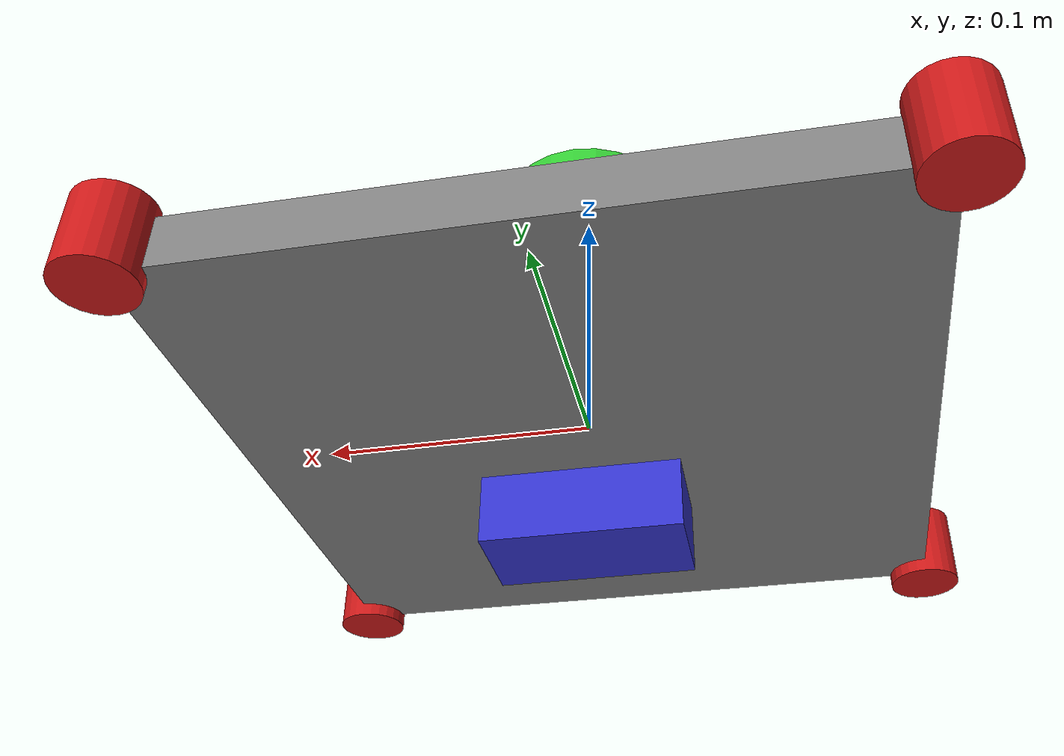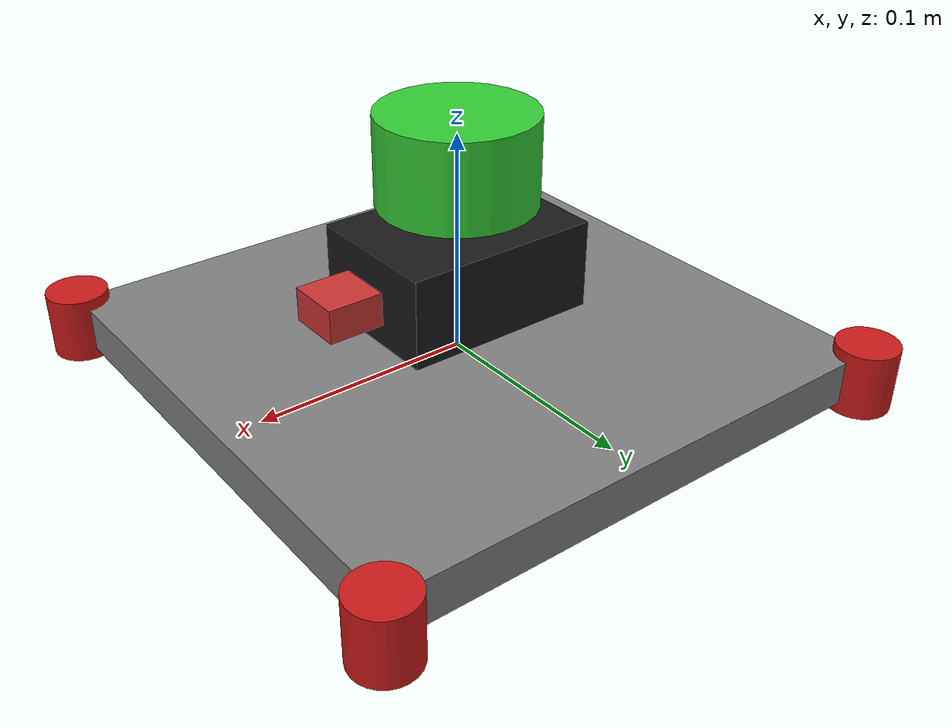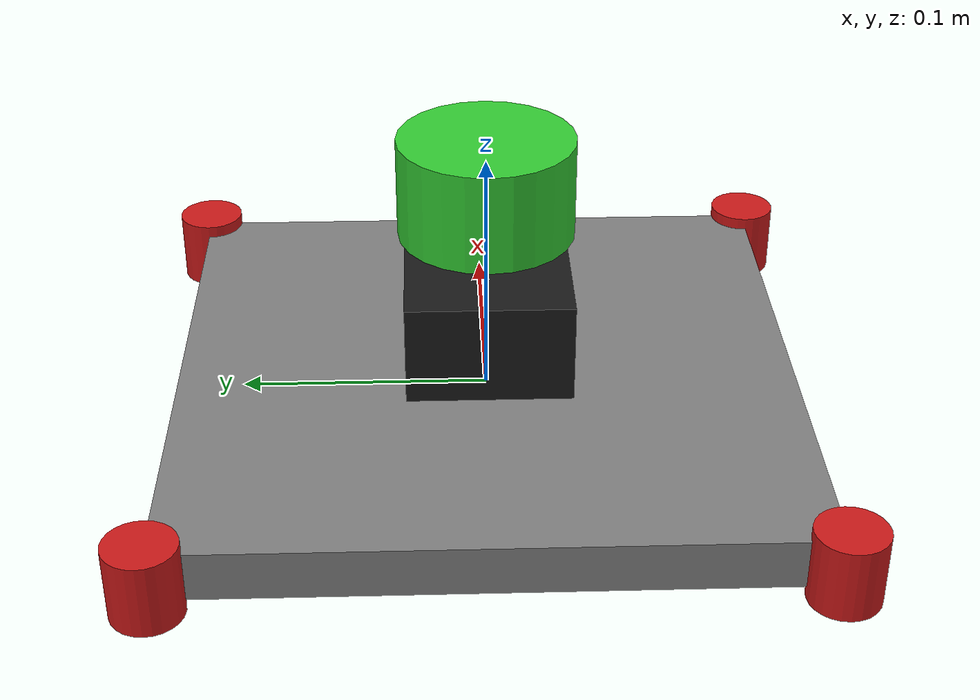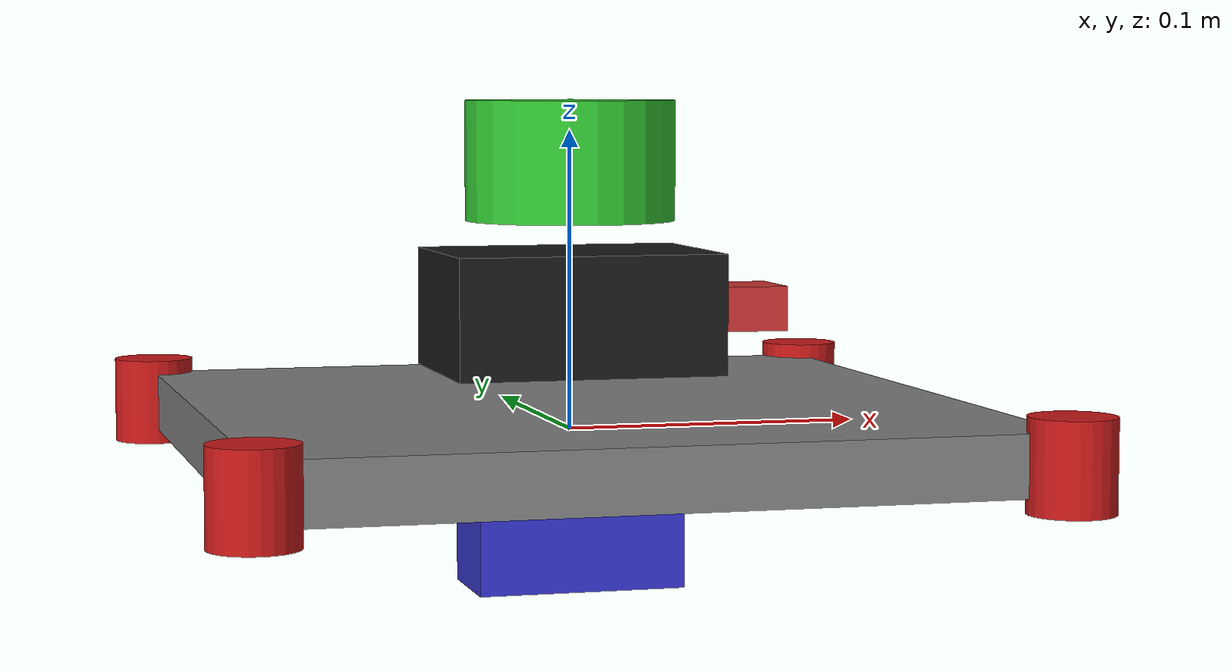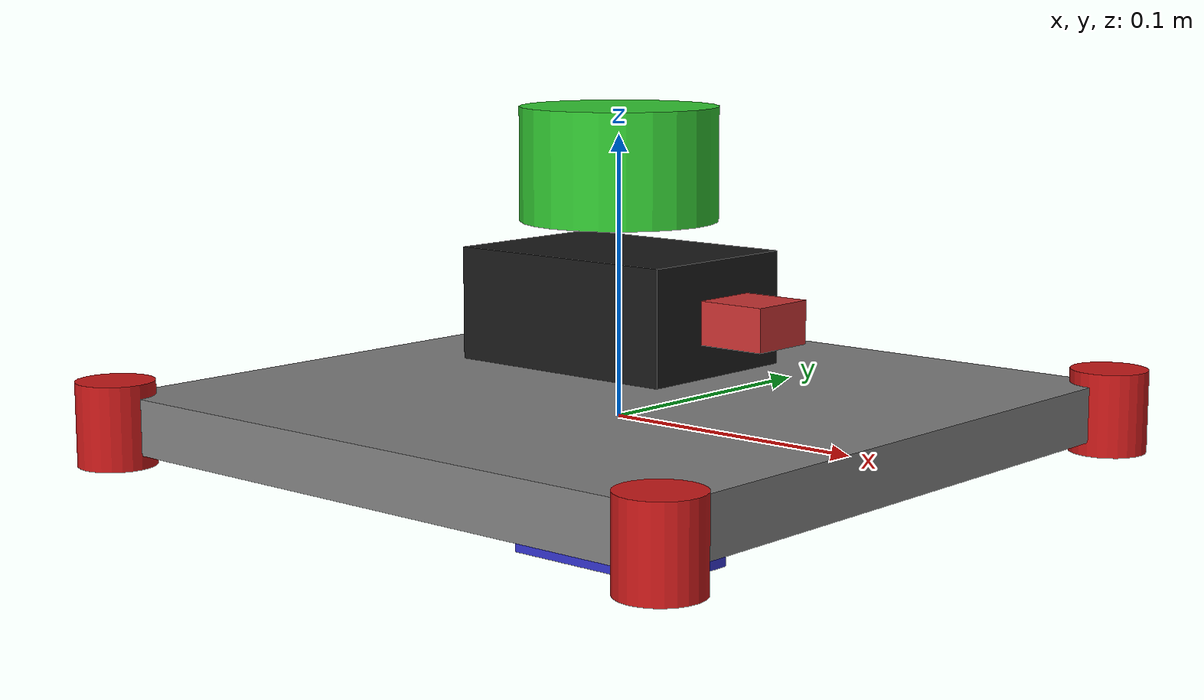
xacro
<?xml version="1.0"?>
<robot name="shadow_drone" xmlns:xacro="http://www.ros.org/wiki/xacro">

  <!-- Parameters -->
  <xacro:property name="frame_x" value="0.25"/>
  <xacro:property name="frame_y" value="0.25"/>
  <xacro:property name="frame_z" value="0.02"/>

  <xacro:property name="battery_x" value="0.07"/>
  <xacro:property name="battery_y" value="0.035"/>
  <xacro:property name="battery_z" value="0.025"/>

  <xacro:property name="stack_x" value="0.09"/>
  <xacro:property name="stack_y" value="0.065"/>
  <xacro:property name="stack_z" value="0.04"/>

  <xacro:property name="lidar_radius" value="0.035"/>
  <xacro:property name="lidar_height" value="0.04"/>

  <xacro:property name="camera_x" value="0.025"/>
  <xacro:property name="camera_y" value="0.025"/>
  <xacro:property name="camera_z" value="0.015"/>

  <!-- Base Link -->
  <link name="base_link">
    <visual>
      <geometry>
        <box size="${frame_x} ${frame_y} ${frame_z}"/>
      </geometry>
      <material name="gray">
        <color rgba="0.5 0.5 0.5 1.0"/>
      </material>
    </visual>
    <collision>
      <geometry>
        <box size="${frame_x} ${frame_y} ${frame_z}"/>
      </geometry>
    </collision>
    <inertial>
      <mass value="0.15"/>
      <origin xyz="0 0 0" rpy="0 0 0"/>
      <inertia ixx="0.01" ixy="0.0" ixz="0.0" iyy="0.01" iyz="0.0" izz="0.01"/>
    </inertial>
  </link>

  <!-- Battery -->
  <link name="battery_link">
    <visual>
      <geometry>
        <box size="${battery_x} ${battery_y} ${battery_z}"/>
      </geometry>
      <material name="blue">
        <color rgba="0.2 0.2 0.8 1.0"/>
      </material>
    </visual>
  </link>

  <joint name="battery_joint" type="fixed">
    <parent link="base_link"/>
    <child link="battery_link"/>
    <origin xyz="0 0 -0.04" rpy="0 0 0"/>
  </joint>

  <!-- Pi + Navio Stack -->
  <link name="stack_link">
    <visual>
      <geometry>
        <box size="${stack_x} ${stack_y} ${stack_z}"/>
      </geometry>
      <material name="black">
        <color rgba="0.1 0.1 0.1 1.0"/>
      </material>
    </visual>
  </link>

  <joint name="stack_joint" type="fixed">
    <parent link="base_link"/>
    <child link="stack_link"/>
    <origin xyz="0 0 0.04" rpy="0 0 0"/>
  </joint>

  <!-- LiDAR -->
  <link name="lidar_link">
    <visual>
      <geometry>
        <cylinder radius="${lidar_radius}" length="${lidar_height}"/>
      </geometry>
      <material name="green">
        <color rgba="0.2 0.8 0.2 1.0"/>
      </material>
    </visual>
  </link>

  <joint name="lidar_joint" type="fixed">
    <parent link="stack_link"/>
    <child link="lidar_link"/>
    <origin xyz="0 0 0.05" rpy="0 0 0"/>
  </joint>

  <gazebo reference="lidar_link">
    <sensor type="ray" name="lidar_sensor">
      <always_on>true</always_on>
      <visualize>false</visualize>
      <update_rate>10</update_rate>
      <ray>
        <scan>
          <horizontal>
            <samples>360</samples>
            <resolution>1</resolution>
            <min_angle>-3.14159</min_angle>
            <max_angle>3.14159</max_angle>
          </horizontal>
        </scan>
        <range>
          <min>0.05</min>
          <max>10.0</max>
          <resolution>0.01</resolution>
        </range>
      </ray>
      <plugin name="gazebo_ros_ray_sensor" filename="libgazebo_ros_ray_sensor.so">
        <ros>
          <remapping>~/out:=/scan</remapping>
        </ros>
        <output_type>sensor_msgs/LaserScan</output_type>
        <frame_name>lidar_link</frame_name>
      </plugin>
    </sensor>
  </gazebo>

  <!-- Camera -->
  <link name="camera_link">
    <visual>
      <geometry>
        <box size="${camera_x} ${camera_y} ${camera_z}"/>
      </geometry>
      <material name="red">
        <color rgba="0.8 0.2 0.2 1.0"/>
      </material>
    </visual>
  </link>

  <joint name="camera_joint" type="fixed">
    <parent link="stack_link"/>
    <child link="camera_link"/>
    <origin xyz="0.06 0 0.0" rpy="0 0 0"/>
  </joint>

  <gazebo reference="camera_link">
    <sensor type="camera" name="camera_sensor">
      <always_on>true</always_on>
      <update_rate>30.0</update_rate>
      <camera>
        <horizontal_fov>1.047</horizontal_fov>
        <image>
          <width>640</width>
          <height>480</height>
          <format>R8G8B8</format>
        </image>
        <clip>
          <near>0.1</near>
          <far>100.0</far>
        </clip>
      </camera>
      <plugin name="gazebo_ros_camera" filename="libgazebo_ros_camera.so">
        <frame_name>camera_link</frame_name>
      </plugin>
    </sensor>
  </gazebo>

<!-- Motors -->
  <link name="motor_front_left">
    <visual>
      <geometry>
        <cylinder radius="0.014" length="0.03"/>
      </geometry>
      <material name="motor_red">
        <color rgba="0.8 0.1 0.1 1.0"/>
      </material>
    </visual>
  </link>

  <joint name="motor_front_left_joint" type="fixed">
    <parent link="base_link"/>
    <child link="motor_front_left"/>
    <origin xyz="-0.125 0.125 0.0" rpy="0 0 0"/>
  </joint>

  <link name="motor_front_right">
    <visual>
      <geometry>
        <cylinder radius="0.014" length="0.03"/>
      </geometry>
      <material name="motor_red"/>
    </visual>
  </link>

  <joint name="motor_front_right_joint" type="fixed">
    <parent link="base_link"/>
    <child link="motor_front_right"/>
    <origin xyz="0.125 0.125 0.0" rpy="0 0 0"/>
  </joint>

  <link name="motor_rear_left">
    <visual>
      <geometry>
        <cylinder radius="0.014" length="0.03"/>
      </geometry>
      <material name="motor_red"/>
    </visual>
  </link>

  <joint name="motor_rear_left_joint" type="fixed">
    <parent link="base_link"/>
    <child link="motor_rear_left"/>
    <origin xyz="-0.125 -0.125 0.0" rpy="0 0 0"/>
  </joint>

  <link name="motor_rear_right">
    <visual>
      <geometry>
        <cylinder radius="0.014" length="0.03"/>
      </geometry>
      <material name="motor_red"/>
    </visual>
  </link>

  <joint name="motor_rear_right_joint" type="fixed">
    <parent link="base_link"/>
    <child link="motor_rear_right"/>
    <origin xyz="0.125 -0.125 0.0" rpy="0 0 0"/>
  </joint>

</robot>
